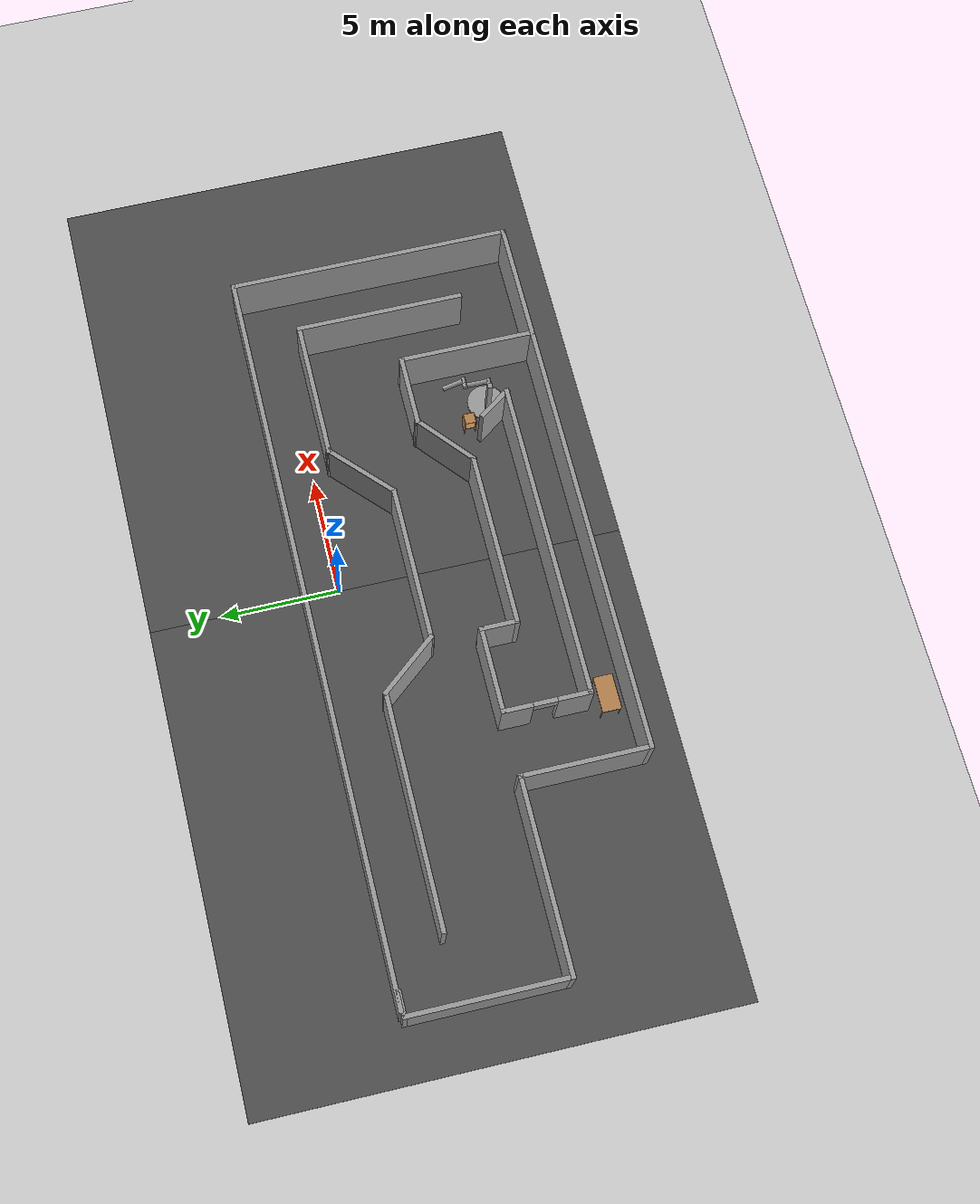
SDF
<sdf version="1.4">
 <world name="default">
  <light name="sun" type="directional">
   <pose>0 0 10 0 -0 0</pose>
   <diffuse>0.8 0.8 0.8 1</diffuse>
   <specular>0.2 0.2 0.2 1</specular>
   <attenuation>
    <range>1000</range>
    <constant>0.9</constant>
    <linear>0.01</linear>
    <quadratic>0.001</quadratic>
   </attenuation>
   <direction>-0.5 0.1 -0.9</direction>
  </light>
  <model name="ground_plane">
   <static>1</static>
   <link name="link">
    <collision name="collision">
     <geometry><plane><normal>0 0 1</normal><size>100 100</size></plane></geometry>
     <surface><friction><ode><mu>100</mu><mu2>50</mu2></ode></friction></surface>
    </collision>
    <visual name="visual">
     <cast_shadows>0</cast_shadows>
     <geometry><plane><normal>0 0 1</normal><size>100 100</size></plane></geometry>
     <material>
      <script><uri>file://media/materials/scripts/gazebo.material</uri><name>Gazebo/Grey</name></script>
     </material>
    </visual>
    <velocity_decay><linear>0</linear><angular>0</angular></velocity_decay>
   </link>
  </model>
  <physics type="ode">
   <max_step_size>0.001</max_step_size>
   <real_time_factor>1</real_time_factor>
   <real_time_update_rate>1000</real_time_update_rate>
   <gravity>0 0 -9.8</gravity>
  </physics>
  <scene><ambient>0.4 0.4 0.4 1</ambient><background>0.7 0.7 0.7 1</background><shadows>1</shadows></scene>
  <model name="corridor_small">
   <link name="Wall_10">
    <collision name="Wall_10_Collision">
     <geometry><box><size>1.12387 0.2 2.5</size></box></geometry>
     <pose>0 0 1.25 0 -0 0</pose>
    </collision>
    <visual name="Wall_10_Visual">
     <pose>0 0 1.25 0 -0 0</pose>
     <geometry><box><size>1.12387 0.2 2.5</size></box></geometry>
     <material>
      <script><uri>file://media/materials/scripts/gazebo.material</uri><name>Gazebo/Grey</name></script>
     </material>
    </visual>
    <velocity_decay><linear>0</linear><angular>0</angular></velocity_decay>
    <pose>-23.7065 13.1084 0 0 -0 0</pose>
   </link>
   <link name="Wall_12">
    <collision name="Wall_12_Collision">
     <geometry><box><size>9.79835 0.2 2.5</size></box></geometry>
     <pose>0 0 1.25 0 -0 0</pose>
    </collision>
    <visual name="Wall_12_Visual">
     <pose>0 0 1.25 0 -0 0</pose>
     <geometry><box><size>9.79835 0.2 2.5</size></box></geometry>
     <material>
      <script><uri>file://media/materials/scripts/gazebo.material</uri><name>Gazebo/Grey</name></script>
     </material>
    </visual>
    <velocity_decay><linear>0</linear><angular>0</angular></velocity_decay>
    <pose>-16.6254 10.9446 0 0 -0 0</pose>
   </link>
   <link name="Wall_13">
    <collision name="Wall_13_Collision">
     <geometry><box><size>3.13082 0.2 2.5</size></box></geometry>
     <pose>0 0 1.25 0 -0 0</pose>
    </collision>
    <visual name="Wall_13_Visual">
     <pose>0 0 1.25 0 -0 0</pose>
     <geometry><box><size>3.13082 0.2 2.5</size></box></geometry>
     <material>
      <script><uri>file://media/materials/scripts/gazebo.material</uri><name>Gazebo/Grey</name></script>
     </material>
    </visual>
    <velocity_decay><linear>0</linear><angular>0</angular></velocity_decay>
    <pose>-10.9033 9.80634 0 0 0 -0.889498</pose>
   </link>
   <link name="Wall_14">
    <collision name="Wall_14_Collision">
     <geometry><box><size>6.66043 0.2 2.5</size></box></geometry>
     <pose>0 0 1.25 0 -0 0</pose>
    </collision>
    <visual name="Wall_14_Visual">
     <pose>0 0 1.25 0 -0 0</pose>
     <geometry><box><size>6.66043 0.2 2.5</size></box></geometry>
     <material>
      <script><uri>file://media/materials/scripts/gazebo.material</uri><name>Gazebo/Grey</name></script>
     </material>
    </visual>
    <velocity_decay><linear>0</linear><angular>0</angular></velocity_decay>
    <pose>-6.75013 8.66808 0 0 -0 0</pose>
   </link>
   <link name="Wall_15">
    <collision name="Wall_15_Collision">
     <geometry><box><size>3.42068 0.2 2.5</size></box></geometry>
     <pose>0 0 1.25 0 -0 0</pose>
    </collision>
    <visual name="Wall_15_Visual">
     <pose>0 0 1.25 0 -0 0</pose>
     <geometry><box><size>3.42068 0.2 2.5</size></box></geometry>
     <material>
      <script><uri>file://media/materials/scripts/gazebo.material</uri><name>Gazebo/Grey</name></script>
     </material>
    </visual>
    <velocity_decay><linear>0</linear><angular>0</angular></velocity_decay>
    <pose>-2.35089 9.77558 0 0 -0 0.758378</pose>
   </link>
   <link name="Wall_16">
    <collision name="Wall_16_Collision">
     <geometry><box><size>5.98362 0.2 2.5</size></box></geometry>
     <pose>0 0 1.25 0 -0 0</pose>
    </collision>
    <visual name="Wall_16_Visual">
     <pose>0 0 1.25 0 -0 0</pose>
     <geometry><box><size>5.98362 0.2 2.5</size></box></geometry>
     <material>
      <script><uri>file://media/materials/scripts/gazebo.material</uri><name>Gazebo/Grey</name></script>
     </material>
    </visual>
    <velocity_decay><linear>0</linear><angular>0</angular></velocity_decay>
    <pose>1.70995 10.8831 0 0 -0 0</pose>
   </link>
   <link name="Wall_17">
    <collision name="Wall_17_Collision">
     <geometry><box><size>7.15265 0.2 2.5</size></box></geometry>
     <pose>0 0 1.25 0 -0 0</pose>
    </collision>
    <visual name="Wall_17_Visual">
     <pose>0 0 1.25 0 -0 0</pose>
     <geometry><box><size>7.15265 0.2 2.5</size></box></geometry>
     <material>
      <script><uri>file://media/materials/scripts/gazebo.material</uri><name>Gazebo/Grey</name></script>
     </material>
    </visual>
    <velocity_decay><linear>0</linear><angular>0</angular></velocity_decay>
    <pose>4.60176 7.40675 0 0 0 -1.5708</pose>
   </link>
   <link name="Wall_19">
    <collision name="Wall_19_Collision">
     <geometry><box><size>5.79904 0.2 2.5</size></box></geometry>
     <pose>0 0 1.25 0 -0 0</pose>
    </collision>
    <visual name="Wall_19_Visual">
     <pose>0 0 1.25 0 -0 0</pose>
     <geometry><box><size>5.79904 0.2 2.5</size></box></geometry>
     <material>
      <script><uri>file://media/materials/scripts/gazebo.material</uri><name>Gazebo/Grey</name></script>
     </material>
    </visual>
    <velocity_decay><linear>0</linear><angular>0</angular></velocity_decay>
    <pose>2.20217 4.2073 0 0 -0 1.5708</pose>
   </link>
   <link name="Wall_20">
    <collision name="Wall_20_Collision">
     <geometry><box><size>3.09181 0.2 2.5</size></box></geometry>
     <pose>0 0 1.25 0 -0 0</pose>
    </collision>
    <visual name="Wall_20_Visual">
     <pose>0 0 1.25 0 -0 0</pose>
     <geometry><box><size>3.09181 0.2 2.5</size></box></geometry>
     <material>
      <script><uri>file://media/materials/scripts/gazebo.material</uri><name>Gazebo/Grey</name></script>
     </material>
    </visual>
    <velocity_decay><linear>0</linear><angular>0</angular></velocity_decay>
    <pose>0.756269 7.00682 0 0 -0 3.14159</pose>
   </link>
   <link name="Wall_21">
    <collision name="Wall_21_Collision">
     <geometry><box><size>3.03629 0.2 2.5</size></box></geometry>
     <pose>0 0 1.25 0 -0 0</pose>
    </collision>
    <visual name="Wall_21_Visual">
     <pose>0 0 1.25 0 -0 0</pose>
     <geometry><box><size>3.03629 0.2 2.5</size></box></geometry>
     <material>
      <script><uri>file://media/materials/scripts/gazebo.material</uri><name>Gazebo/Grey</name></script>
     </material>
    </visual>
    <velocity_decay><linear>0</linear><angular>0</angular></velocity_decay>
    <pose>-1.76637 6.0839 0 0 0 -2.43297</pose>
   </link>
   <link name="Wall_22">
    <collision name="Wall_22_Collision">
     <geometry><box><size>7.46029 0.2 2.5</size></box></geometry>
     <pose>0 0 1.25 0 -0 0</pose>
    </collision>
    <visual name="Wall_22_Visual">
     <pose>0 0 1.25 0 -0 0</pose>
     <geometry><box><size>7.46029 0.2 2.5</size></box></geometry>
     <material>
      <script><uri>file://media/materials/scripts/gazebo.material</uri><name>Gazebo/Grey</name></script>
     </material>
    </visual>
    <velocity_decay><linear>0</linear><angular>0</angular></velocity_decay>
    <pose>-6.47326 5.16099 0 0 -0 3.14159</pose>
   </link>
   <link name="Wall_23">
    <collision name="Wall_23_Collision">
     <geometry><box><size>1.67667 0.2 2.5</size></box></geometry>
     <pose>0 0 1.25 0 -0 0</pose>
    </collision>
    <visual name="Wall_23_Visual">
     <pose>0 0 1.25 0 -0 0</pose>
     <geometry><box><size>1.67667 0.2 2.5</size></box></geometry>
     <material>
      <script><uri>file://media/materials/scripts/gazebo.material</uri><name>Gazebo/Grey</name></script>
     </material>
    </visual>
    <velocity_decay><linear>0</linear><angular>0</angular></velocity_decay>
    <pose>-10.1034 5.89932 0 0 -0 1.5708</pose>
   </link>
   <link name="Wall_24">
    <collision name="Wall_24_Collision">
     <geometry><box><size>3.70709 0.2 2.5</size></box></geometry>
     <pose>0 0 1.25 0 -0 0</pose>
    </collision>
    <visual name="Wall_24_Visual">
     <pose>0 0 1.25 0 -0 0</pose>
     <geometry><box><size>3.70709 0.2 2.5</size></box></geometry>
     <material>
      <script><uri>file://media/materials/scripts/gazebo.material</uri><name>Gazebo/Grey</name></script>
     </material>
    </visual>
    <velocity_decay><linear>0</linear><angular>0</angular></velocity_decay>
    <pose>-11.8569 6.63766 0 0 -0 3.14159</pose>
   </link>
   <link name="Wall_25">
    <pose>-13.6105 4.85335 0 0 0 -1.5708</pose>
    <visual name="Wall_25_Visual_0">
     <pose>-1.22292 0 1.25 0 -0 0</pose>
     <geometry><box><size>1.32278 0.2 2.5</size></box></geometry>
     <material>
      <script><uri>file://media/materials/scripts/gazebo.material</uri><name>Gazebo/Grey</name></script>
     </material>
    </visual>
    <collision name="Wall_25_Collision_0">
     <geometry><box><size>1.32278 0.2 2.5</size></box></geometry>
     <pose>-1.22292 0 1.25 0 -0 0</pose>
    </collision>
    <visual name="Wall_25_Visual_1">
     <pose>1.16139 0 1.25 0 -0 0</pose>
     <geometry><box><size>1.44584 0.2 2.5</size></box></geometry>
     <material>
      <script><uri>file://media/materials/scripts/gazebo.material</uri><name>Gazebo/Grey</name></script>
     </material>
    </visual>
    <collision name="Wall_25_Collision_1">
     <geometry><box><size>1.44584 0.2 2.5</size></box></geometry>
     <pose>1.16139 0 1.25 0 -0 0</pose>
    </collision>
    <visual name="Wall_25_Visual_2">
     <pose>-0.061528 0 2.25 0 -0 0</pose>
     <geometry><box><size>1 0.2 0.5</size></box></geometry>
     <material>
      <script><uri>file://media/materials/scripts/gazebo.material</uri><name>Gazebo/Grey</name></script>
     </material>
    </visual>
    <collision name="Wall_25_Collision_2">
     <geometry><box><size>1 0.2 0.5</size></box></geometry>
     <pose>-0.061528 0 2.25 0 -0 0</pose>
    </collision>
    <velocity_decay><linear>0</linear><angular>0</angular></velocity_decay>
   </link>
   <link name="Wall_26">
    <collision name="Wall_26_Collision">
     <geometry><box><size>13.6131 0.2 2.5</size></box></geometry>
     <pose>0 0 1.25 0 -0 0</pose>
    </collision>
    <visual name="Wall_26_Visual">
     <pose>0 0 1.25 0 -0 0</pose>
     <geometry><box><size>13.6131 0.2 2.5</size></box></geometry>
     <material>
      <script><uri>file://media/materials/scripts/gazebo.material</uri><name>Gazebo/Grey</name></script>
     </material>
    </visual>
    <velocity_decay><linear>0</linear><angular>0</angular></velocity_decay>
    <pose>-6.90395 3.06904 0 0 -0 0</pose>
   </link>
   <link name="Wall_27">
    <collision name="Wall_27_Collision">
     <geometry><box><size>1.70209 0.2 2.5</size></box></geometry>
     <pose>0 0 1.25 0 -0 0</pose>
    </collision>
    <visual name="Wall_27_Visual">
     <pose>0 0 1.25 0 -0 0</pose>
     <geometry><box><size>1.70209 0.2 2.5</size></box></geometry>
     <material>
      <script><uri>file://media/materials/scripts/gazebo.material</uri><name>Gazebo/Grey</name></script>
     </material>
    </visual>
    <velocity_decay><linear>0</linear><angular>0</angular></velocity_decay>
    <pose>-0.628108 3.68432 0 0 -0 2.18152</pose>
   </link>
   <link name="Wall_4">
    <collision name="Wall_4_Collision">
     <geometry><box><size>31.3001 0.2 2.5</size></box></geometry>
     <pose>0 0 1.25 0 -0 0</pose>
    </collision>
    <visual name="Wall_4_Visual">
     <pose>0 0 1.25 0 -0 0</pose>
     <geometry><box><size>31.3001 0.2 2.5</size></box></geometry>
     <material>
      <script><uri>file://media/materials/scripts/gazebo.material</uri><name>Gazebo/Grey</name></script>
     </material>
    </visual>
    <velocity_decay><linear>0</linear><angular>0</angular></velocity_decay>
    <pose>-8.3686 13.1866 0 0 -0 0</pose>
   </link>
   <link name="Wall_5">
    <collision name="Wall_5_Collision">
     <geometry><box><size>12.0374 0.2 2.5</size></box></geometry>
     <pose>0 0 1.25 0 -0 0</pose>
    </collision>
    <visual name="Wall_5_Visual">
     <pose>0 0 1.25 0 -0 0</pose>
     <geometry><box><size>12.0374 0.2 2.5</size></box></geometry>
     <material>
      <script><uri>file://media/materials/scripts/gazebo.material</uri><name>Gazebo/Grey</name></script>
     </material>
    </visual>
    <velocity_decay><linear>0</linear><angular>0</angular></velocity_decay>
    <pose>7.18143 7.2679 0 0 0 -1.5708</pose>
   </link>
   <link name="Wall_6">
    <collision name="Wall_6_Collision">
     <geometry><box><size>23.6596 0.2 2.5</size></box></geometry>
     <pose>0 0 1.25 0 -0 0</pose>
    </collision>
    <visual name="Wall_6_Visual">
     <pose>0 0 1.25 0 -0 0</pose>
     <geometry><box><size>23.6596 0.2 2.5</size></box></geometry>
     <material>
      <script><uri>file://media/materials/scripts/gazebo.material</uri><name>Gazebo/Grey</name></script>
     </material>
    </visual>
    <velocity_decay><linear>0</linear><angular>0</angular></velocity_decay>
    <pose>-4.54835 1.3492 0 0 -0 3.14159</pose>
   </link>
   <link name="Wall_7">
    <collision name="Wall_7_Collision">
     <geometry><box><size>5.47302 0.2 2.5</size></box></geometry>
     <pose>0 0 1.25 0 -0 0</pose>
    </collision>
    <visual name="Wall_7_Visual">
     <pose>0 0 1.25 0 -0 0</pose>
     <geometry><box><size>5.47302 0.2 2.5</size></box></geometry>
     <material>
      <script><uri>file://media/materials/scripts/gazebo.material</uri><name>Gazebo/Grey</name></script>
     </material>
    </visual>
    <velocity_decay><linear>0</linear><angular>0</angular></velocity_decay>
    <pose>-16.2781 3.98571 0 0 -0 1.5708</pose>
   </link>
   <link name="Wall_8">
    <collision name="Wall_8_Collision">
     <geometry><box><size>8.09029 0.2 2.5</size></box></geometry>
     <pose>0 0 1.25 0 -0 0</pose>
    </collision>
    <visual name="Wall_8_Visual">
     <pose>0 0 1.25 0 -0 0</pose>
     <geometry><box><size>8.09029 0.2 2.5</size></box></geometry>
     <material>
      <script><uri>file://media/materials/scripts/gazebo.material</uri><name>Gazebo/Grey</name></script>
     </material>
    </visual>
    <velocity_decay><linear>0</linear><angular>0</angular></velocity_decay>
    <pose>-20.2233 6.62222 0 0 -0 3.14159</pose>
   </link>
   <link name="Wall_9">
    <collision name="Wall_9_Collision">
     <geometry><box><size>6.6862 0.2 2.5</size></box></geometry>
     <pose>0 0 1.25 0 -0 0</pose>
    </collision>
    <visual name="Wall_9_Visual">
     <pose>0 0 1.25 0 -0 0</pose>
     <geometry><box><size>6.6862 0.2 2.5</size></box></geometry>
     <material>
      <script><uri>file://media/materials/scripts/gazebo.material</uri><name>Gazebo/Grey</name></script>
     </material>
    </visual>
    <velocity_decay><linear>0</linear><angular>0</angular></velocity_decay>
    <pose>-24.1684 9.86532 0 0 -0 1.5708</pose>
   </link>
   <static>1</static>
   <pose>6.4264 -11.6495 0 0 -0 0</pose>
  </model>
  <model name="asphalt_plane">
   <static>1</static>
   <link name="link">
    <collision name="collision"><geometry><box><size>20 20 0.1</size></box></geometry></collision>
    <visual name="visual">
     <cast_shadows>0</cast_shadows>
     <geometry><box><size>20 20 0.1</size></box></geometry>
     <material>
      <script>
       <uri>model://asphalt_plane/materials/scripts</uri>
       <uri>model://asphalt_plane/materials/textures</uri>
       <name>vrc/asphalt</name>
      </script>
     </material>
    </visual>
    <velocity_decay><linear>0</linear><angular>0</angular></velocity_decay>
   </link>
   <pose>-10 -2 0 0 -0 0</pose>
  </model>
  <model name="asphalt_plane_0">
   <static>1</static>
   <link name="link">
    <collision name="collision"><geometry><box><size>20 20 0.1</size></box></geometry></collision>
    <visual name="visual">
     <cast_shadows>0</cast_shadows>
     <geometry><box><size>20 20 0.1</size></box></geometry>
     <material>
      <script>
       <uri>model://asphalt_plane/materials/scripts</uri>
       <uri>model://asphalt_plane/materials/textures</uri>
       <name>vrc/asphalt</name>
      </script>
     </material>
    </visual>
    <velocity_decay><linear>0</linear><angular>0</angular></velocity_decay>
   </link>
   <pose>10 -2 0 0 -0 0</pose>
  </model>
  <model name="table">
   <static>1</static>
   <link name="link">
    <collision name="surface">
     <pose>0 0 1 0 -0 0</pose>
     <geometry><box><size>1.5 0.8 0.03</size></box></geometry>
     <surface><friction><ode><mu>0.6</mu><mu2>0.6</mu2></ode></friction></surface>
    </collision>
    <visual name="visual1">
     <pose>0 0 1 0 -0 0</pose>
     <geometry><box><size>1.5 0.8 0.03</size></box></geometry>
     <material>
      <script><uri>file://media/materials/scripts/gazebo.material</uri><name>Gazebo/Wood</name></script>
     </material>
    </visual>
    <collision name="front_left_leg">
     <pose>0.68 0.38 0.5 0 -0 0</pose>
     <geometry><cylinder><radius>0.02</radius><length>1</length></cylinder></geometry>
    </collision>
    <visual name="front_left_leg">
     <pose>0.68 0.38 0.5 0 -0 0</pose>
     <geometry><cylinder><radius>0.02</radius><length>1</length></cylinder></geometry>
     <material>
      <script><uri>file://media/materials/scripts/gazebo.material</uri><name>Gazebo/Grey</name></script>
     </material>
    </visual>
    <collision name="front_right_leg">
     <pose>0.68 -0.38 0.5 0 -0 0</pose>
     <geometry><cylinder><radius>0.02</radius><length>1</length></cylinder></geometry>
    </collision>
    <visual name="front_right_leg">
     <pose>0.68 -0.38 0.5 0 -0 0</pose>
     <geometry><cylinder><radius>0.02</radius><length>1</length></cylinder></geometry>
     <material>
      <script><uri>file://media/materials/scripts/gazebo.material</uri><name>Gazebo/Grey</name></script>
     </material>
    </visual>
    <collision name="back_right_leg">
     <pose>-0.68 -0.38 0.5 0 -0 0</pose>
     <geometry><cylinder><radius>0.02</radius><length>1</length></cylinder></geometry>
    </collision>
    <visual name="back_right_leg">
     <pose>-0.68 -0.38 0.5 0 -0 0</pose>
     <geometry><cylinder><radius>0.02</radius><length>1</length></cylinder></geometry>
     <material>
      <script><uri>file://media/materials/scripts/gazebo.material</uri><name>Gazebo/Grey</name></script>
     </material>
    </visual>
    <collision name="back_left_leg">
     <pose>-0.68 0.38 0.5 0 -0 0</pose>
     <geometry><cylinder><radius>0.02</radius><length>1</length></cylinder></geometry>
    </collision>
    <visual name="back_left_leg">
     <pose>-0.68 0.38 0.5 0 -0 0</pose>
     <geometry><cylinder><radius>0.02</radius><length>1</length></cylinder></geometry>
     <material>
      <script><uri>file://media/materials/scripts/gazebo.material</uri><name>Gazebo/Grey</name></script>
     </material>
    </visual>
    <velocity_decay><linear>0</linear><angular>0</angular></velocity_decay>
   </link>
   <pose>-7 -9.46331 0 0 -0 0</pose>
  </model>
  <model name="cabinet">
   <static>1</static>
   <link name="cabinet_bottom_plate">
    <inertial>
     <pose>0 0 -1 0 -0 0</pose>
     <inertia><ixx>2.05</ixx><ixy>0</ixy><ixz>0</ixz><iyy>2.05</iyy><iyz>0</iyz><izz>2.05</izz></inertia>
     <mass>25</mass>
    </inertial>
    <collision name="cabinet_bottom_plate_geom">
     <pose>0 0 0.01 0 -0 0</pose>
     <geometry><box><size>0.45 0.45 0.02</size></box></geometry>
    </collision>
    <visual name="cabinet_bottom_plate_geom_visual">
     <pose>0 0 0.01 0 -0 0</pose>
     <geometry><box><size>0.45 0.45 0.02</size></box></geometry>
     <material>
      <script><uri>file://media/materials/scripts/gazebo.material</uri><name>Gazebo/Wood</name></script>
     </material>
    </visual>
    <collision name="cabinet_bottom_plate_geom_cabinet_back_plate">
     <pose>0.235 0 0.51 0 -0 0</pose>
     <geometry><box><size>0.02 0.45 1.02</size></box></geometry>
    </collision>
    <visual name="cabinet_bottom_plate_geom_cabinet_back_plate_visual">
     <pose>0.235 0 0.51 0 -0 0</pose>
     <geometry><box><size>0.02 0.45 1.02</size></box></geometry>
     <material>
      <script><uri>file://media/materials/scripts/gazebo.material</uri><name>Gazebo/Wood</name></script>
     </material>
    </visual>
    <collision name="cabinet_bottom_plate_geom_cabinet_left_plate">
     <pose>0 0.235 0.51 0 -0 0</pose>
     <geometry><box><size>0.45 0.02 1.02</size></box></geometry>
    </collision>
    <visual name="cabinet_bottom_plate_geom_cabinet_left_plate_visual">
     <pose>0 0.235 0.51 0 -0 0</pose>
     <geometry><box><size>0.45 0.02 1.02</size></box></geometry>
     <material>
      <script><uri>file://media/materials/scripts/gazebo.material</uri><name>Gazebo/Wood</name></script>
     </material>
    </visual>
    <collision name="cabinet_bottom_plate_geom_cabinet_middle_plate">
     <pose>0 0 0.51 0 -0 0</pose>
     <geometry><box><size>0.45 0.45 0.02</size></box></geometry>
    </collision>
    <visual name="cabinet_bottom_plate_geom_cabinet_middle_plate_visual">
     <pose>0 0 0.51 0 -0 0</pose>
     <geometry><box><size>0.45 0.45 0.02</size></box></geometry>
     <material>
      <script><uri>file://media/materials/scripts/gazebo.material</uri><name>Gazebo/Wood</name></script>
     </material>
    </visual>
    <collision name="cabinet_bottom_plate_geom_cabinet_right_plate">
     <pose>0 -0.235 0.51 0 -0 0</pose>
     <geometry><box><size>0.45 0.02 1.02</size></box></geometry>
    </collision>
    <visual name="cabinet_bottom_plate_geom_cabinet_right_plate_visual">
     <pose>0 -0.235 0.51 0 -0 0</pose>
     <geometry><box><size>0.45 0.02 1.02</size></box></geometry>
     <material>
      <script><uri>file://media/materials/scripts/gazebo.material</uri><name>Gazebo/Wood</name></script>
     </material>
    </visual>
    <collision name="cabinet_bottom_plate_geom_cabinet_top_plate">
     <pose>0 0 1.01 0 -0 0</pose>
     <geometry><box><size>0.45 0.45 0.02</size></box></geometry>
    </collision>
    <visual name="cabinet_bottom_plate_geom_cabinet_top_plate_visual">
     <pose>0 0 1.01 0 -0 0</pose>
     <geometry><box><size>0.45 0.45 0.02</size></box></geometry>
     <material>
      <script><uri>file://media/materials/scripts/gazebo.material</uri><name>Gazebo/Wood</name></script>
     </material>
    </visual>
    <velocity_decay><linear>0</linear><angular>0</angular></velocity_decay>
   </link>
   <pose>6 -7 0 0 -0 0</pose>
  </model>
  <model name="double_pendulum_with_base">
   <link name="base">
    <inertial>
     <mass>100</mass>
     <inertia><ixx>1</ixx><ixy>0</ixy><ixz>0</ixz><iyy>1</iyy><iyz>0</iyz><izz>1</izz></inertia>
    </inertial>
    <visual name="vis_plate_on_ground">
     <pose>0 0 0.01 0 -0 0</pose>
     <geometry><cylinder><radius>0.8</radius><length>0.02</length></cylinder></geometry>
     <material>
      <script><uri>file://media/materials/scripts/gazebo.material</uri><name>Gazebo/Grey</name></script>
     </material>
    </visual>
    <visual name="vis_pole">
     <pose>-0.275 0 1.1 0 -0 0</pose>
     <geometry><box><size>0.2 0.2 2.2</size></box></geometry>
     <material>
      <script><uri>file://media/materials/scripts/gazebo.material</uri><name>Gazebo/Grey</name></script>
     </material>
    </visual>
    <collision name="col_plate_on_ground">
     <pose>0 0 0.01 0 -0 0</pose>
     <geometry><cylinder><radius>0.8</radius><length>0.02</length></cylinder></geometry>
    </collision>
    <collision name="col_pole">
     <pose>-0.275 0 1.1 0 -0 0</pose>
     <geometry><box><size>0.2 0.2 2.2</size></box></geometry>
    </collision>
    <velocity_decay><linear>0</linear><angular>0</angular></velocity_decay>
   </link>
   <link name="upper_link">
    <pose>0 0 2.1 -1.5708 0 0</pose>
    <inertial>
     <pose>0 0 0.5 0 -0 0</pose>
     <inertia><ixx>1</ixx><ixy>0</ixy><ixz>0</ixz><iyy>1</iyy><iyz>0</iyz><izz>1</izz></inertia>
     <mass>1</mass>
    </inertial>
    <visual name="vis_upper_joint">
     <pose>-0.05 0 0 3.14159 1.57079 3.14159</pose>
     <geometry><cylinder><radius>0.1</radius><length>0.3</length></cylinder></geometry>
     <material>
      <script><uri>file://media/materials/scripts/gazebo.material</uri><name>Gazebo/Grey</name></script>
     </material>
    </visual>
    <visual name="vis_lower_joint">
     <pose>0 0 1 3.14159 1.57079 3.14159</pose>
     <geometry><cylinder><radius>0.1</radius><length>0.2</length></cylinder></geometry>
     <material>
      <script><uri>file://media/materials/scripts/gazebo.material</uri><name>Gazebo/Grey</name></script>
     </material>
    </visual>
    <visual name="vis_cylinder">
     <pose>0 0 0.5 0 -0 0</pose>
     <geometry><cylinder><radius>0.1</radius><length>0.9</length></cylinder></geometry>
     <material>
      <script><uri>file://media/materials/scripts/gazebo.material</uri><name>Gazebo/Grey</name></script>
     </material>
    </visual>
    <collision name="col_upper_joint">
     <pose>-0.05 0 0 3.14159 1.57079 3.14159</pose>
     <geometry><cylinder><radius>0.1</radius><length>0.3</length></cylinder></geometry>
    </collision>
    <collision name="col_lower_joint">
     <pose>0 0 1 3.14159 1.57079 3.14159</pose>
     <geometry><cylinder><radius>0.1</radius><length>0.2</length></cylinder></geometry>
    </collision>
    <collision name="col_cylinder">
     <pose>0 0 0.5 0 -0 0</pose>
     <geometry><cylinder><radius>0.1</radius><length>0.9</length></cylinder></geometry>
    </collision>
    <velocity_decay><linear>0</linear><angular>0</angular></velocity_decay>
   </link>
   <link name="lower_link">
    <pose>0.25 1 2.1 -2 0 0</pose>
    <inertial>
     <pose>0 0 0.5 0 -0 0</pose>
     <inertia><ixx>1</ixx><ixy>0</ixy><ixz>0</ixz><iyy>1</iyy><iyz>0</iyz><izz>1</izz></inertia>
     <mass>1</mass>
    </inertial>
    <visual name="vis_lower_joint">
     <pose>0 0 0 3.14159 1.57079 3.14159</pose>
     <geometry><cylinder><radius>0.08</radius><length>0.3</length></cylinder></geometry>
     <material>
      <script><uri>file://media/materials/scripts/gazebo.material</uri><name>Gazebo/Grey</name></script>
     </material>
    </visual>
    <visual name="vis_cylinder">
     <pose>0 0 0.5 0 -0 0</pose>
     <geometry><cylinder><radius>0.1</radius><length>0.9</length></cylinder></geometry>
     <material>
      <script><uri>file://media/materials/scripts/gazebo.material</uri><name>Gazebo/Grey</name></script>
     </material>
    </visual>
    <collision name="col_lower_joint">
     <pose>0 0 0 3.14159 1.57079 3.14159</pose>
     <geometry><cylinder><radius>0.08</radius><length>0.3</length></cylinder></geometry>
    </collision>
    <collision name="col_cylinder">
     <pose>0 0 0.5 0 -0 0</pose>
     <geometry><cylinder><radius>0.1</radius><length>0.9</length></cylinder></geometry>
    </collision>
    <velocity_decay><linear>0</linear><angular>0</angular></velocity_decay>
   </link>
   <joint name="upper_joint" type="revolute">
    <parent>base</parent>
    <child>upper_link</child>
    <axis><xyz>1 0 0</xyz><limit><lower>-1e+16</lower><upper>1e+16</upper></limit></axis>
   </joint>
   <joint name="lower_joint" type="revolute">
    <parent>upper_link</parent>
    <child>lower_link</child>
    <axis><xyz>1 0 0</xyz><limit><lower>-1e+16</lower><upper>1e+16</upper></limit></axis>
   </joint>
   <pose>6.99958 -7.99999 0.050009 -4e-06 -7e-06 -0.001299</pose>
   <static>0</static>
  </model>
 </world>
</sdf>
